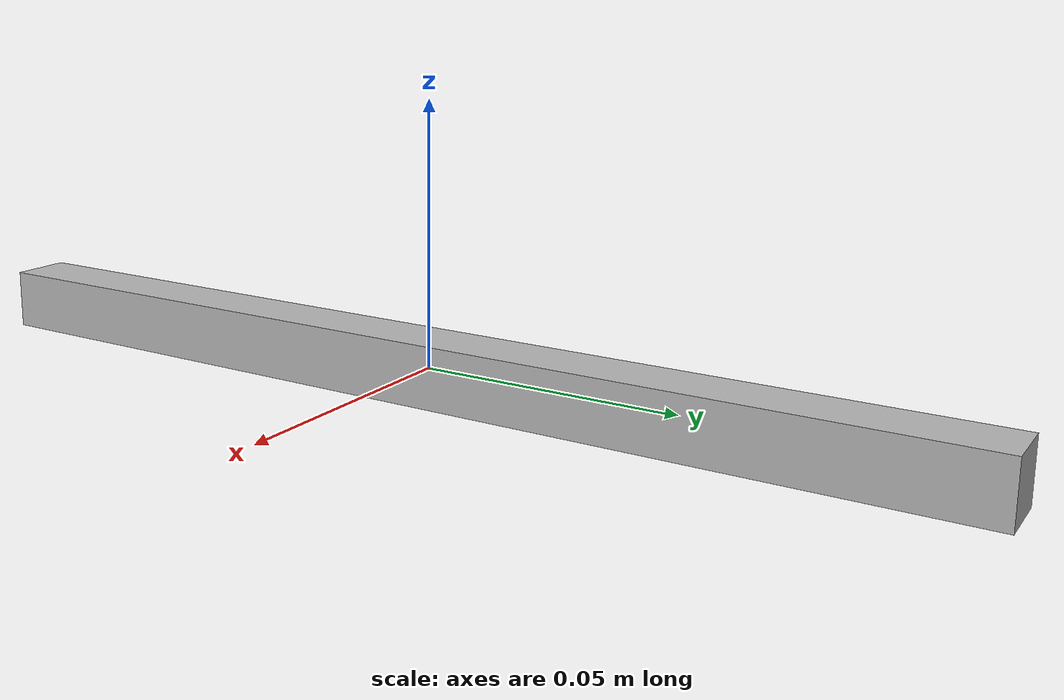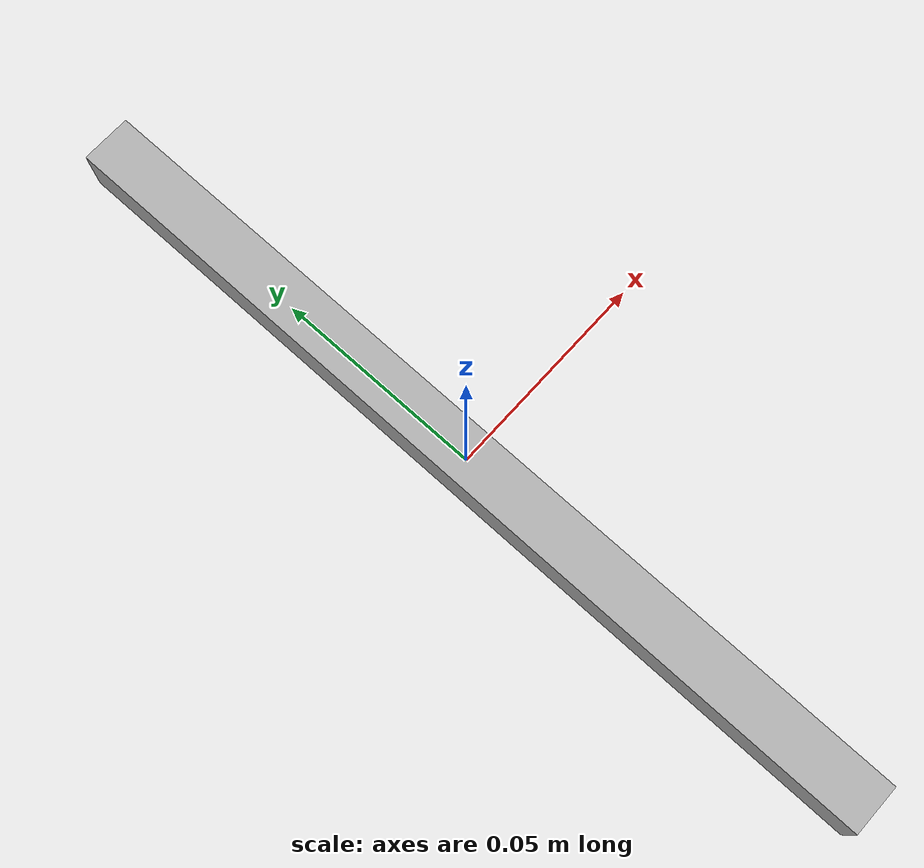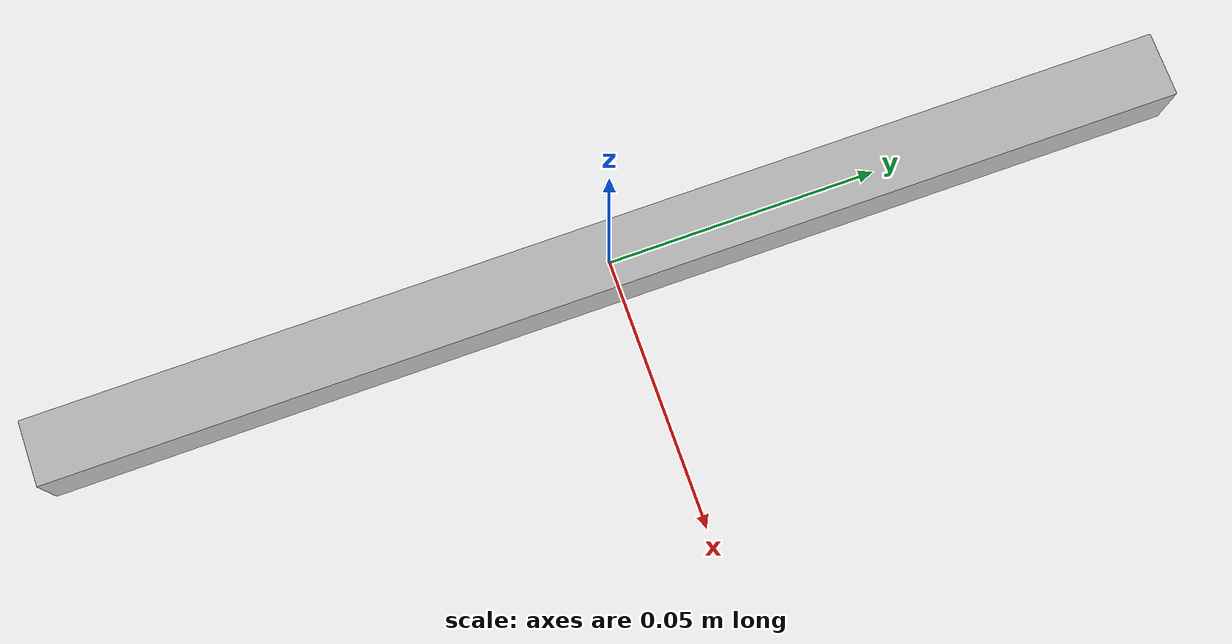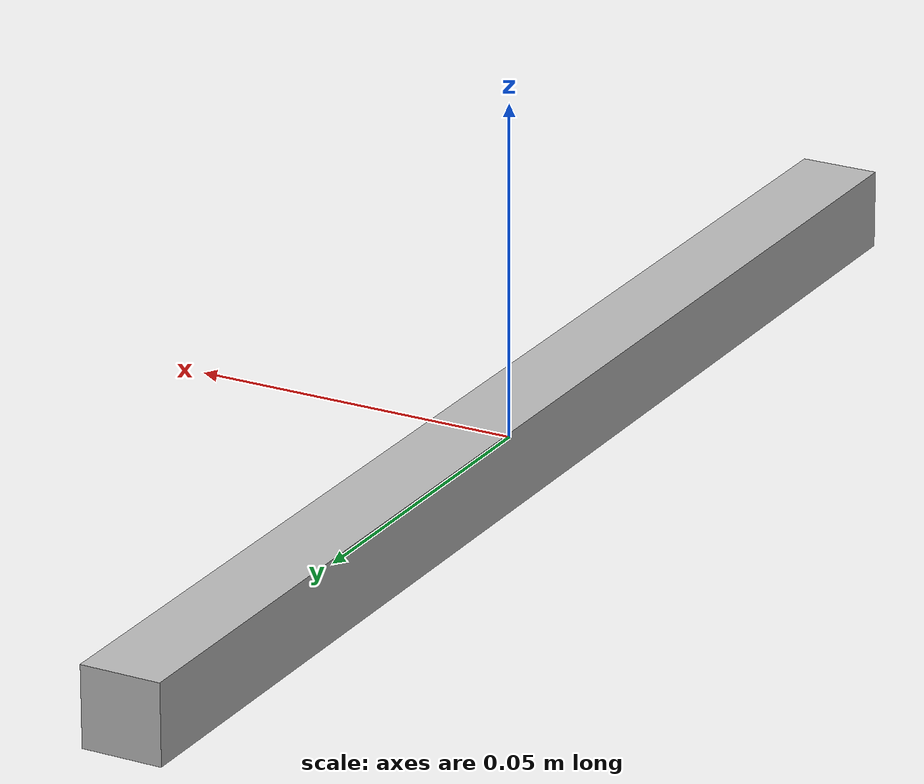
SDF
<?xml version="1.0" ?>
<sdf version="1.4">
  <model name="rm_bumper_sensor">
    <!-- Only difference to regular iris is this sensor and a MAVLink stream -->
    <link name="link">
      <inertial>
        <pose>0.01 0.025 0.025 0 0 0</pose>
        <mass>0.01</mass>
        <inertia>
          <ixx>4.15e-6</ixx>
          <ixy>0</ixy>
          <ixz>0</ixz>
          <iyy>2.407e-6</iyy>
          <iyz>0</iyz>
          <izz>2.407e-6</izz>
        </inertia>
      </inertial>

      <collision name='bumper_collision'>
        <pose>0 0 0 0 -0 0</pose>
        <geometry>
          <box>
            <size>0.012 0.21 0.012</size>
          </box>
        </geometry>
      </collision>

      <visual name='bumper_visual'>
        <pose>0 0 0 0 0 0</pose>
        <geometry>
          <box>
            <size>0.012 0.21 0.012</size>
          </box>
        </geometry>
      </visual>

      <sensor name="bumper_sensor" type="contact">
        <always_on>true</always_on>
        <update_rate>30.0</update_rate>
        <contact>
          <collision>bumper_collision</collision>
        </contact>
        <plugin name="bumper_raw" filename="libgazebo_ros_bumper.so">
          <bumperTopicName>bumper/raw</bumperTopicName>
        </plugin>
      </sensor>

    </link>
  </model>
</sdf>
